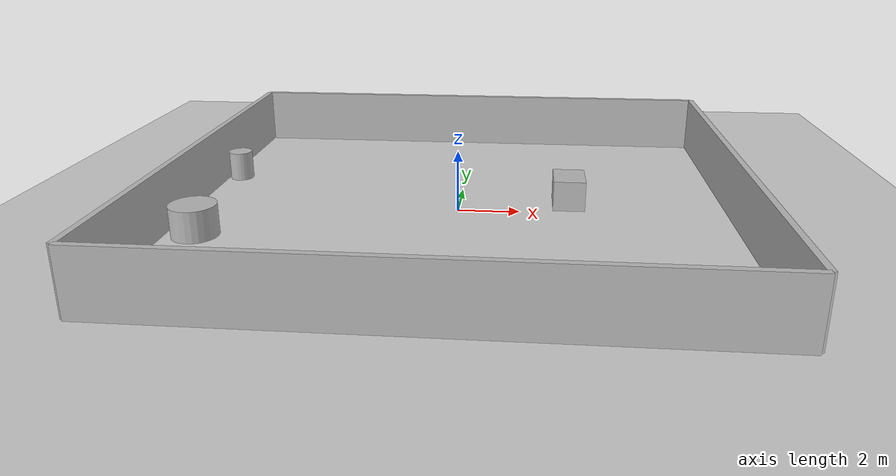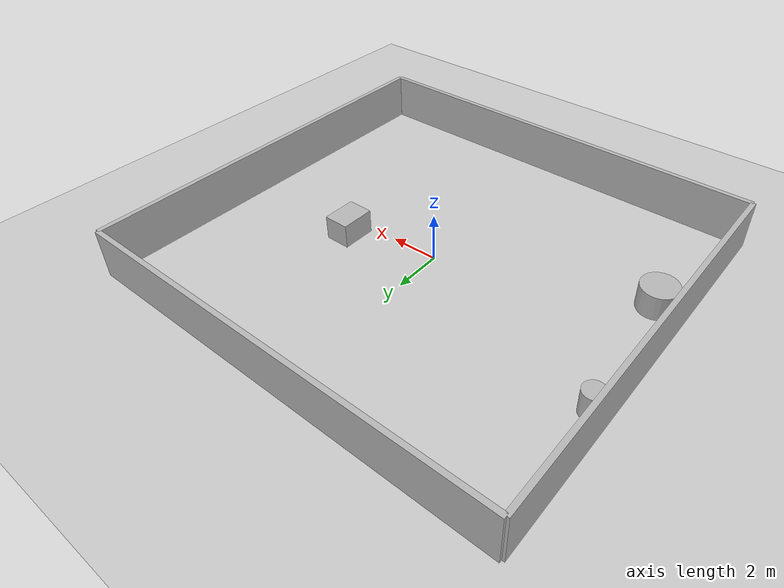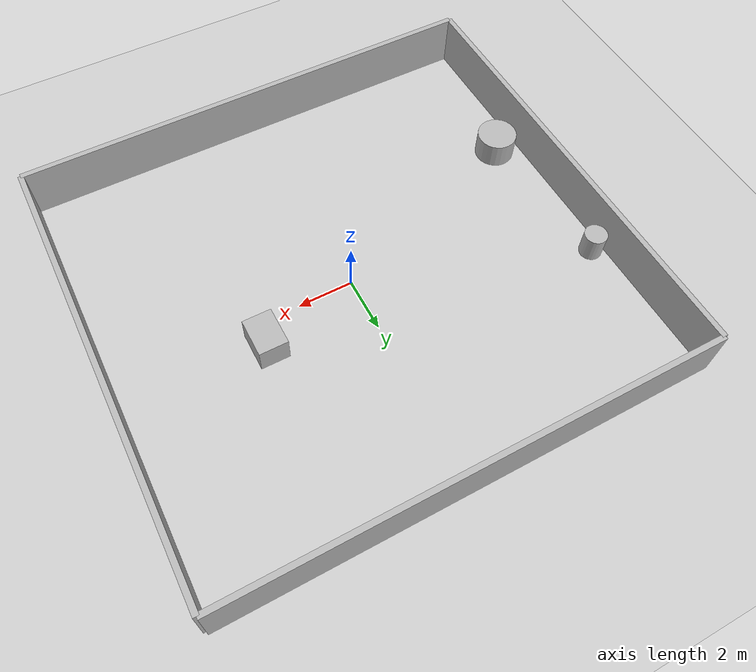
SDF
<?xml version="1.0"?>
<sdf version="1.6">
  <world name="env_39">

    <include><uri>model://ground_plane</uri></include>
    <include><uri>model://sun</uri></include>

    <!-- WALLS -->
    <model name="wall_north"><static>true</static><pose>0 8.261229599764544 1 0 0 0</pose>
      <link name="link"><collision name="collision">
        <geometry><box><size>17.6838876699128 0.2 2</size></box></geometry>
      </collision><visual name="visual">
        <geometry><box><size>17.6838876699128 0.2 2</size></box></geometry>
      </visual></link>
    </model>

    <model name="wall_south"><static>true</static><pose>0 -8.261229599764544 1 0 0 0</pose>
      <link name="link"><collision name="collision">
        <geometry><box><size>17.6838876699128 0.2 2</size></box></geometry>
      </collision><visual name="visual">
        <geometry><box><size>17.6838876699128 0.2 2</size></box></geometry>
      </visual></link>
    </model>

    <model name="wall_east"><static>true</static><pose>8.8419438349564 0 1 0 0 1.57</pose>
      <link name="link"><collision name="collision">
        <geometry><box><size>16.522459199529088 0.2 2</size></box></geometry>
      </collision><visual name="visual">
        <geometry><box><size>16.522459199529088 0.2 2</size></box></geometry>
      </visual></link>
    </model>

    <model name="wall_west"><static>true</static><pose>-8.8419438349564 0 1 0 0 1.57</pose>
      <link name="link"><collision name="collision">
        <geometry><box><size>16.522459199529088 0.2 2</size></box></geometry>
      </collision><visual name="visual">
        <geometry><box><size>16.522459199529088 0.2 2</size></box></geometry>
      </visual></link>
    </model>

    <!-- SENSOR -->

    <model name="lidar_sensor">
      <static>true</static>
      <pose>4.307090855676805 0.7554495949272937 0.4 0 0 0</pose>
      <link name="link">
        <sensor name="lidar" type="ray">
          <pose>0 0 0 0 0 0</pose>
          <visualize>true</visualize>
          <always_on>true</always_on>
          <update_rate>10</update_rate>
          <ray>
            <scan><horizontal>
              <samples>240</samples>
              <resolution>1</resolution>
              <min_angle>-3.14159</min_angle>
              <max_angle>3.14159</max_angle>
            </horizontal></scan>
            <range><min>0.15</min><max>20.0</max><resolution>0.01</resolution></range>
          </ray>
          <plugin name="lidar_plugin" filename="liblidar_plugin.so"/>
        </sensor>
      </link>
    </model>

    <!-- OBSTACLES -->

    <model name="obstacle_0">
      <static>true</static>
      <pose>3.631725155483908 0.9016204427529733 0.5 0 0 0</pose>
      <link name="link">
        <collision name="collision">
          <geometry><box><size>1.05 1.39 1.0</size></box></geometry>
        </collision>
        <visual name="visual">
          <geometry><box><size>1.05 1.39 1.0</size></box></geometry>
        </visual>
      </link>
    </model>

    <model name="obstacle_1">
      <static>true</static>
      <pose>-7.794337397330394 -2.830977285677184 0.5 0 0 0</pose>
      <link name="link">
        <collision name="collision">
          <geometry><cylinder><radius>0.73</radius><length>1.0</length></cylinder></geometry>
        </collision>
        <visual name="visual">
          <geometry><cylinder><radius>0.73</radius><length>1.0</length></cylinder></geometry>
        </visual>
      </link>
    </model>

    <model name="obstacle_2">
      <static>true</static>
      <pose>-8.285872586327233 2.7506334062286566 0.5 0 0 0</pose>
      <link name="link">
        <collision name="collision">
          <geometry><cylinder><radius>0.41</radius><length>1.0</length></cylinder></geometry>
        </collision>
        <visual name="visual">
          <geometry><cylinder><radius>0.41</radius><length>1.0</length></cylinder></geometry>
        </visual>
      </link>
    </model>

  </world>
</sdf>
